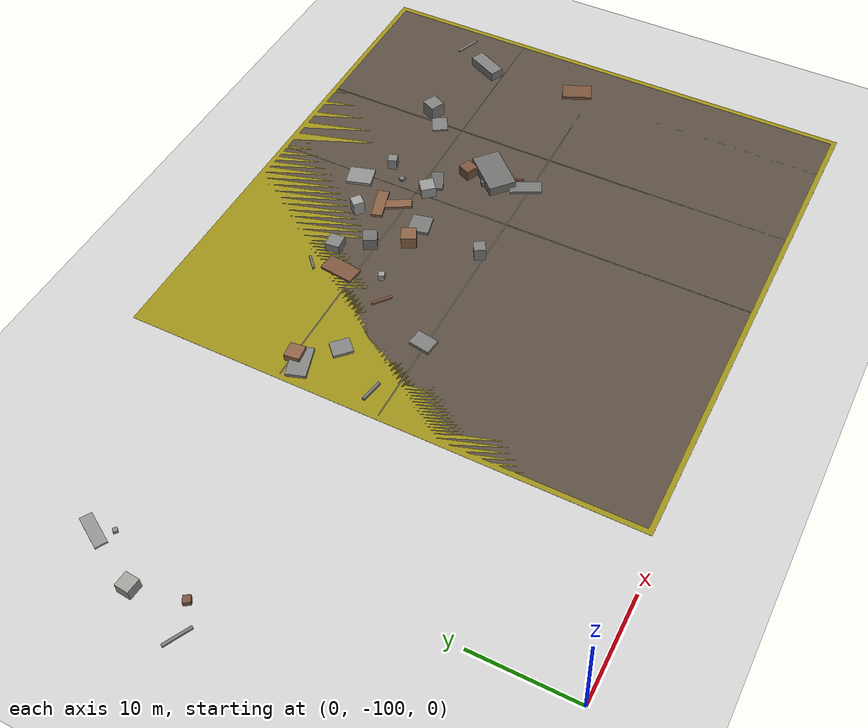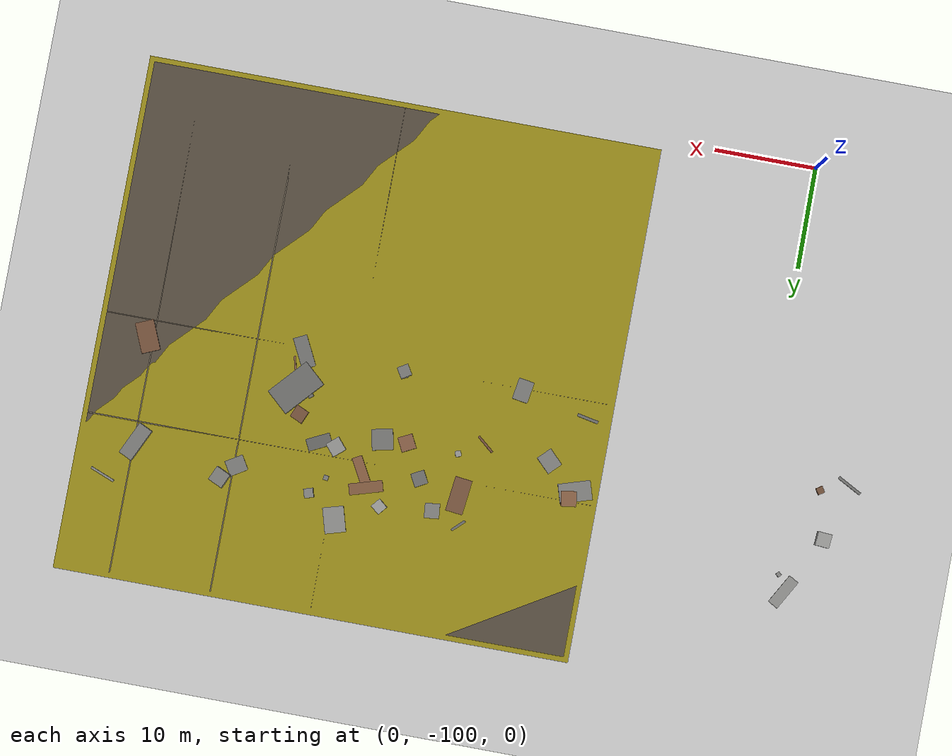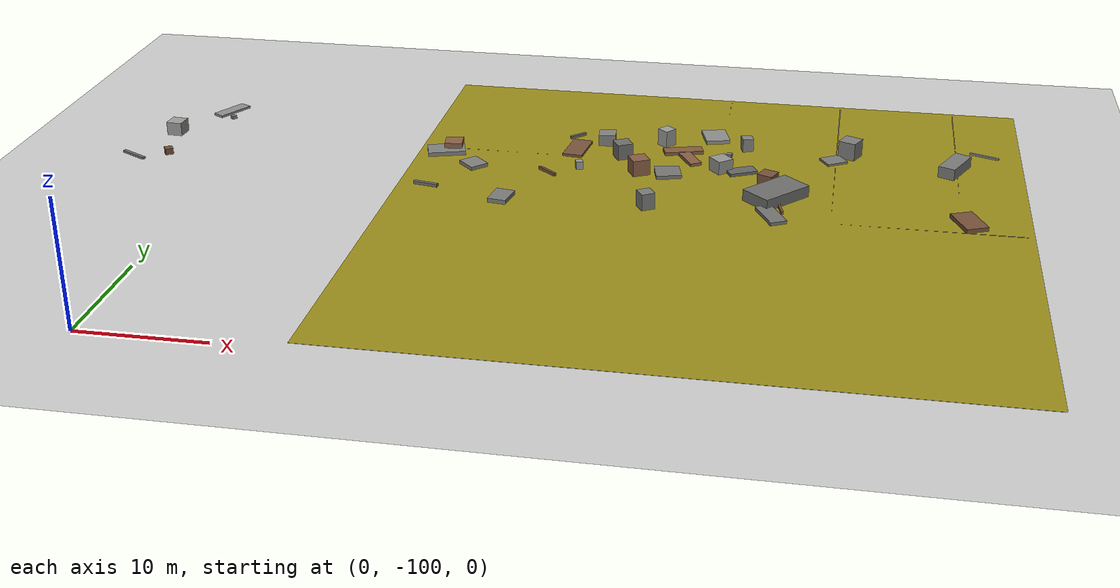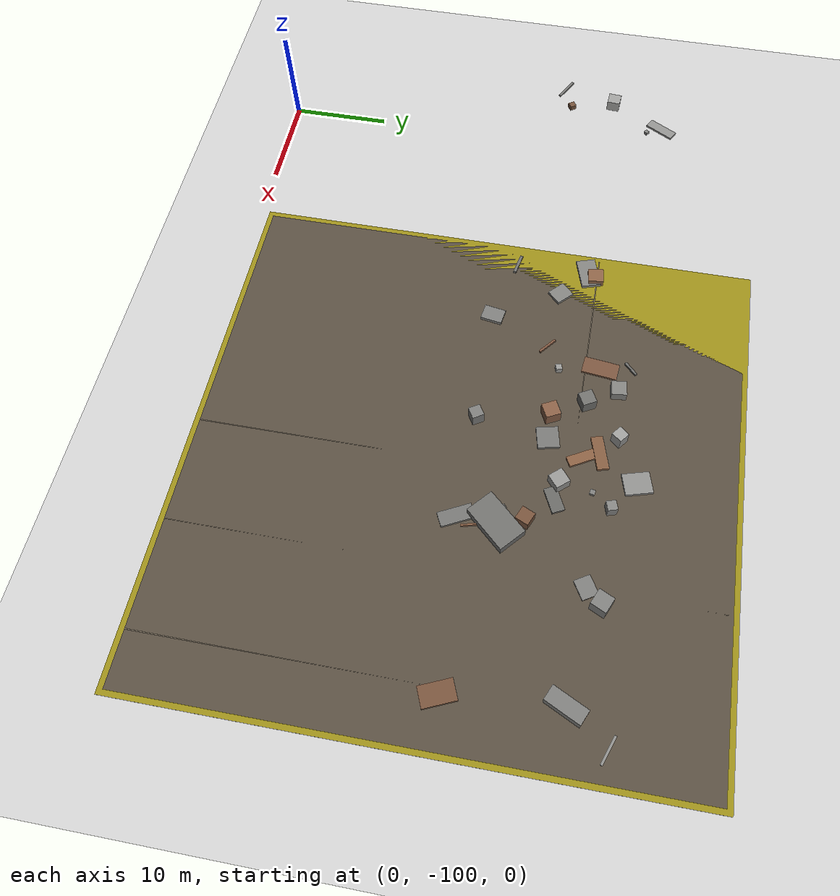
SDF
<sdf version="1.6">
 <world name="navitas_arena">
  <model name="ground_plane">
   <static>true</static>
   <link name="link">
    <collision name="collision">
     <geometry><plane><normal>0 0 1</normal><size>400 400</size></plane></geometry>
     <surface><friction><ode><mu>0.8</mu><mu2>0.8</mu2></ode></friction></surface>
    </collision>
    <visual name="visual">
     <cast_shadows>false</cast_shadows>
     <geometry><plane><normal>0 0 1</normal><size>400 400</size></plane></geometry>
     <material>
      <script><uri>file://media/materials/scripts/gazebo.material</uri><name>Gazebo/Grey</name></script>
     </material>
    </visual>
   </link>
  </model>
  <model name="gr_orta">
   <static>true</static>
   <pose>40.700 -73.600 0.010 0 0 0.000</pose>
   <link name="link">
    <collision name="col"><geometry><box><size>51.000 51.000 0.020</size></box></geometry></collision>
    <visual name="vis">
     <geometry><box><size>51.000 51.000 0.020</size></box></geometry>
     <material><ambient>0.60 0.55 0.10 1</ambient><diffuse>0.60 0.55 0.10 1</diffuse></material>
    </visual>
   </link>
  </model>
  <model name="gd_orta">
   <static>true</static>
   <pose>40.700 -73.600 0.010 0 0 0.000</pose>
   <link name="link">
    <collision name="col"><geometry><box><size>50.000 50.000 0.020</size></box></geometry></collision>
    <visual name="vis">
     <geometry><box><size>50.000 50.000 0.020</size></box></geometry>
     <material><ambient>0.34 0.30 0.25 1</ambient><diffuse>0.34 0.30 0.25 1</diffuse></material>
    </visual>
   </link>
  </model>
  <model name="gv_orta_0">
   <static>true</static>
   <pose>40.700 -73.600 0.010 0 0 0.000</pose>
   <link name="link">
    <collision name="col"><geometry><box><size>0.120 50.000 0.020</size></box></geometry></collision>
    <visual name="vis">
     <geometry><box><size>0.120 50.000 0.020</size></box></geometry>
     <material><ambient>0.42 0.38 0.32 1</ambient><diffuse>0.42 0.38 0.32 1</diffuse></material>
    </visual>
   </link>
  </model>
  <model name="gh_orta_0">
   <static>true</static>
   <pose>40.700 -73.600 0.010 0 0 0.000</pose>
   <link name="link">
    <collision name="col"><geometry><box><size>50.000 0.120 0.020</size></box></geometry></collision>
    <visual name="vis">
     <geometry><box><size>50.000 0.120 0.020</size></box></geometry>
     <material><ambient>0.42 0.38 0.32 1</ambient><diffuse>0.42 0.38 0.32 1</diffuse></material>
    </visual>
   </link>
  </model>
  <model name="gv_orta_1">
   <static>true</static>
   <pose>50.700 -73.600 0.010 0 0 0.000</pose>
   <link name="link">
    <collision name="col"><geometry><box><size>0.120 50.000 0.020</size></box></geometry></collision>
    <visual name="vis">
     <geometry><box><size>0.120 50.000 0.020</size></box></geometry>
     <material><ambient>0.42 0.38 0.32 1</ambient><diffuse>0.42 0.38 0.32 1</diffuse></material>
    </visual>
   </link>
  </model>
  <model name="gh_orta_1">
   <static>true</static>
   <pose>40.700 -63.600 0.010 0 0 0.000</pose>
   <link name="link">
    <collision name="col"><geometry><box><size>50.000 0.120 0.020</size></box></geometry></collision>
    <visual name="vis">
     <geometry><box><size>50.000 0.120 0.020</size></box></geometry>
     <material><ambient>0.42 0.38 0.32 1</ambient><diffuse>0.42 0.38 0.32 1</diffuse></material>
    </visual>
   </link>
  </model>
  <model name="gv_orta_2">
   <static>true</static>
   <pose>60.700 -73.600 0.010 0 0 0.000</pose>
   <link name="link">
    <collision name="col"><geometry><box><size>0.120 50.000 0.020</size></box></geometry></collision>
    <visual name="vis">
     <geometry><box><size>0.120 50.000 0.020</size></box></geometry>
     <material><ambient>0.42 0.38 0.32 1</ambient><diffuse>0.42 0.38 0.32 1</diffuse></material>
    </visual>
   </link>
  </model>
  <model name="chic_orta_5">
   <static>true</static>
   <pose>46.088 -69.600 0.500 0 0 0.839</pose>
   <link name="link">
    <collision name="col"><geometry><box><size>4.714 2.793 1.000</size></box></geometry></collision>
    <visual name="vis">
     <geometry><box><size>4.714 2.793 1.000</size></box></geometry>
     <material><ambient>0.43 0.43 0.42 1</ambient><diffuse>0.43 0.43 0.42 1</diffuse></material>
    </visual>
   </link>
  </model>
  <model name="chic_orta_6">
   <static>true</static>
   <pose>60.484 -61.600 0.500 0 0 1.132</pose>
   <link name="link">
    <collision name="col"><geometry><box><size>3.486 1.432 1.000</size></box></geometry></collision>
    <visual name="vis">
     <geometry><box><size>3.486 1.432 1.000</size></box></geometry>
     <material><ambient>0.48 0.48 0.47 1</ambient><diffuse>0.48 0.48 0.47 1</diffuse></material>
    </visual>
   </link>
  </model>
  <model name="deb_orta_2">
   <static>true</static>
   <pose>17.560 -71.838 0.138 0 0 2.945</pose>
   <link name="link">
    <collision name="col"><geometry><box><size>2.136 0.287 0.275</size></box></geometry></collision>
    <visual name="vis">
     <geometry><box><size>2.136 0.287 0.275</size></box></geometry>
     <material><ambient>0.43 0.43 0.42 1</ambient><diffuse>0.43 0.43 0.42 1</diffuse></material>
    </visual>
   </link>
  </model>
  <model name="deb_orta_5">
   <static>true</static>
   <pose>42.990 -59.746 0.592 0 0 0.305</pose>
   <link name="link">
    <collision name="col"><geometry><box><size>0.919 0.919 1.184</size></box></geometry></collision>
    <visual name="vis">
     <geometry><box><size>0.919 0.919 1.184</size></box></geometry>
     <material><ambient>0.51 0.51 0.50 1</ambient><diffuse>0.51 0.51 0.50 1</diffuse></material>
    </visual>
   </link>
  </model>
  <model name="deb_orta_7">
   <static>true</static>
   <pose>38.222 -62.586 0.142 0 0 2.077</pose>
   <link name="link">
    <collision name="col"><geometry><box><size>3.371 1.010 0.284</size></box></geometry></collision>
    <visual name="vis">
     <geometry><box><size>3.371 1.010 0.284</size></box></geometry>
     <material><ambient>0.53 0.37 0.26 1</ambient><diffuse>0.53 0.37 0.26 1</diffuse></material>
    </visual>
   </link>
  </model>
  <model name="deb_orta_10">
   <static>true</static>
   <pose>35.970 -73.095 0.703 0 0 2.119</pose>
   <link name="link">
    <collision name="col"><geometry><box><size>1.142 1.142 1.406</size></box></geometry></collision>
    <visual name="vis">
     <geometry><box><size>1.142 1.142 1.406</size></box></geometry>
     <material><ambient>0.48 0.48 0.47 1</ambient><diffuse>0.48 0.48 0.47 1</diffuse></material>
    </visual>
   </link>
  </model>
  <model name="deb_orta_12">
   <static>true</static>
   <pose>30.873 -60.231 0.498 0 0 1.670</pose>
   <link name="link">
    <collision name="col"><geometry><box><size>1.457 1.457 0.996</size></box></geometry></collision>
    <visual name="vis">
     <geometry><box><size>1.457 1.457 0.996</size></box></geometry>
     <material><ambient>0.50 0.50 0.49 1</ambient><diffuse>0.50 0.50 0.49 1</diffuse></material>
    </visual>
   </link>
  </model>
  <model name="deb_orta_17">
   <static>true</static>
   <pose>40.092 -57.634 0.173 0 0 1.851</pose>
   <link name="link">
    <collision name="col"><geometry><box><size>2.559 2.071 0.346</size></box></geometry></collision>
    <visual name="vis">
     <geometry><box><size>2.559 2.071 0.346</size></box></geometry>
     <material><ambient>0.55 0.55 0.54 1</ambient><diffuse>0.55 0.55 0.54 1</diffuse></material>
    </visual>
   </link>
  </model>
  <model name="deb_orta_20">
   <static>true</static>
   <pose>41.193 -64.648 0.588 0 0 2.275</pose>
   <link name="link">
    <collision name="col"><geometry><box><size>1.442 1.442 1.176</size></box></geometry></collision>
    <visual name="vis">
     <geometry><box><size>1.442 1.442 1.176</size></box></geometry>
     <material><ambient>0.58 0.58 0.57 1</ambient><diffuse>0.58 0.58 0.57 1</diffuse></material>
    </visual>
   </link>
  </model>
  <model name="deb_orta_23">
   <static>true</static>
   <pose>37.630 -61.274 0.157 0 0 0.290</pose>
   <link name="link">
    <collision name="col"><geometry><box><size>3.327 1.115 0.315</size></box></geometry></collision>
    <visual name="vis">
     <geometry><box><size>3.327 1.115 0.315</size></box></geometry>
     <material><ambient>0.51 0.36 0.25 1</ambient><diffuse>0.51 0.36 0.25 1</diffuse></material>
    </visual>
   </link>
  </model>
  <model name="deb_orta_25">
   <static>true</static>
   <pose>17.992 -63.806 0.405 0 0 1.698</pose>
   <link name="link">
    <collision name="col"><geometry><box><size>1.508 1.508 0.811</size></box></geometry></collision>
    <visual name="vis">
     <geometry><box><size>1.508 1.508 0.811</size></box></geometry>
     <material><ambient>0.54 0.38 0.27 1</ambient><diffuse>0.54 0.38 0.27 1</diffuse></material>
    </visual>
   </link>
  </model>
  <model name="deb_orta_34">
   <static>true</static>
   <pose>42.927 -64.820 0.138 0 0 0.458</pose>
   <link name="link">
    <collision name="col"><geometry><box><size>2.419 1.211 0.277</size></box></geometry></collision>
    <visual name="vis">
     <geometry><box><size>2.419 1.211 0.277</size></box></geometry>
     <material><ambient>0.40 0.40 0.39 1</ambient><diffuse>0.40 0.40 0.39 1</diffuse></material>
    </visual>
   </link>
  </model>
  <model name="deb_orta_35">
   <static>true</static>
   <pose>61.286 -71.914 0.180 0 0 1.976</pose>
   <link name="link">
    <collision name="col"><geometry><box><size>3.042 1.858 0.361</size></box></geometry></collision>
    <visual name="vis">
     <geometry><box><size>3.042 1.858 0.361</size></box></geometry>
     <material><ambient>0.46 0.32 0.23 1</ambient><diffuse>0.46 0.32 0.23 1</diffuse></material>
    </visual>
   </link>
  </model>
  <model name="deb_orta_36">
   <static>true</static>
   <pose>34.460 -66.274 0.694 0 0 2.043</pose>
   <link name="link">
    <collision name="col"><geometry><box><size>1.467 1.467 1.389</size></box></geometry></collision>
    <visual name="vis">
     <geometry><box><size>1.467 1.467 1.389</size></box></geometry>
     <material><ambient>0.53 0.37 0.27 1</ambient><diffuse>0.53 0.37 0.27 1</diffuse></material>
    </visual>
   </link>
  </model>
  <model name="deb_orta_38">
   <static>true</static>
   <pose>50.443 -61.094 0.103 0 0 0.545</pose>
   <link name="link">
    <collision name="col"><geometry><box><size>1.862 1.574 0.206</size></box></geometry></collision>
    <visual name="vis">
     <geometry><box><size>1.862 1.574 0.206</size></box></geometry>
     <material><ambient>0.48 0.48 0.47 1</ambient><diffuse>0.48 0.48 0.47 1</diffuse></material>
    </visual>
   </link>
  </model>
  <model name="deb_orta_39">
   <static>true</static>
   <pose>17.488 -64.578 0.182 0 0 0.303</pose>
   <link name="link">
    <collision name="col"><geometry><box><size>3.190 1.926 0.364</size></box></geometry></collision>
    <visual name="vis">
     <geometry><box><size>3.190 1.926 0.364</size></box></geometry>
     <material><ambient>0.50 0.50 0.49 1</ambient><diffuse>0.50 0.50 0.49 1</diffuse></material>
    </visual>
   </link>
  </model>
  <model name="deb_orta_43">
   <static>true</static>
   <pose>36.895 -66.194 0.164 0 0 0.223</pose>
   <link name="link">
    <collision name="col"><geometry><box><size>2.118 2.064 0.328</size></box></geometry></collision>
    <visual name="vis">
     <geometry><box><size>2.118 2.064 0.328</size></box></geometry>
     <material><ambient>0.46 0.46 0.45 1</ambient><diffuse>0.46 0.46 0.45 1</diffuse></material>
    </visual>
   </link>
  </model>
  <model name="deb_orta_45">
   <static>true</static>
   <pose>51.790 -59.699 0.772 0 0 1.140</pose>
   <link name="link">
    <collision name="col"><geometry><box><size>1.526 1.526 1.544</size></box></geometry></collision>
    <visual name="vis">
     <geometry><box><size>1.526 1.526 1.544</size></box></geometry>
     <material><ambient>0.49 0.49 0.48 1</ambient><diffuse>0.49 0.49 0.48 1</diffuse></material>
    </visual>
   </link>
  </model>
  <model name="deb_orta_48">
   <static>true</static>
   <pose>26.921 -67.549 0.140 0 0 2.447</pose>
   <link name="link">
    <collision name="col"><geometry><box><size>2.037 0.218 0.280</size></box></geometry></collision>
    <visual name="vis">
     <geometry><box><size>2.037 0.218 0.280</size></box></geometry>
     <material><ambient>0.48 0.33 0.24 1</ambient><diffuse>0.48 0.33 0.24 1</diffuse></material>
    </visual>
   </link>
  </model>
  <model name="deb_orta_49">
   <static>true</static>
   <pose>28.566 -62.166 0.125 0 0 1.456</pose>
   <link name="link">
    <collision name="col"><geometry><box><size>3.449 1.711 0.249</size></box></geometry></collision>
    <visual name="vis">
     <geometry><box><size>3.449 1.711 0.249</size></box></geometry>
     <material><ambient>0.47 0.33 0.24 1</ambient><diffuse>0.47 0.33 0.24 1</diffuse></material>
    </visual>
   </link>
  </model>
  <model name="deb_orta_53">
   <static>true</static>
   <pose>35.839 -72.784 0.200 0 0 0.433</pose>
   <link name="link">
    <collision name="col"><geometry><box><size>0.565 0.565 0.401</size></box></geometry></collision>
    <visual name="vis">
     <geometry><box><size>0.565 0.565 0.401</size></box></geometry>
     <material><ambient>0.53 0.53 0.52 1</ambient><diffuse>0.53 0.53 0.52 1</diffuse></material>
    </visual>
   </link>
  </model>
  <model name="deb_orta_59">
   <static>true</static>
   <pose>29.378 -66.156 0.341 0 0 0.319</pose>
   <link name="link">
    <collision name="col"><geometry><box><size>0.580 0.580 0.682</size></box></geometry></collision>
    <visual name="vis">
     <geometry><box><size>0.580 0.580 0.682</size></box></geometry>
     <material><ambient>0.59 0.59 0.58 1</ambient><diffuse>0.59 0.59 0.58 1</diffuse></material>
    </visual>
   </link>
  </model>
  <model name="deb_orta_60">
   <static>true</static>
   <pose>28.101 -59.273 0.125 0 0 0.766</pose>
   <link name="link">
    <collision name="col"><geometry><box><size>1.585 0.239 0.250</size></box></geometry></collision>
    <visual name="vis">
     <geometry><box><size>1.585 0.239 0.250</size></box></geometry>
     <material><ambient>0.42 0.42 0.41 1</ambient><diffuse>0.42 0.42 0.41 1</diffuse></material>
    </visual>
   </link>
  </model>
  <model name="deb_orta_63">
   <static>true</static>
   <pose>32.642 -63.081 0.690 0 0 2.067</pose>
   <link name="link">
    <collision name="col"><geometry><box><size>1.366 1.366 1.380</size></box></geometry></collision>
    <visual name="vis">
     <geometry><box><size>1.366 1.366 1.380</size></box></geometry>
     <material><ambient>0.43 0.43 0.42 1</ambient><diffuse>0.43 0.43 0.42 1</diffuse></material>
    </visual>
   </link>
  </model>
  <model name="deb_orta_64">
   <static>true</static>
   <pose>44.618 -69.190 0.270 0 0 0.653</pose>
   <link name="link">
    <collision name="col"><geometry><box><size>0.530 0.530 0.540</size></box></geometry></collision>
    <visual name="vis">
     <geometry><box><size>0.530 0.530 0.540</size></box></geometry>
     <material><ambient>0.42 0.42 0.41 1</ambient><diffuse>0.42 0.42 0.41 1</diffuse></material>
    </visual>
   </link>
  </model>
  <model name="deb_orta_65">
   <static>true</static>
   <pose>46.510 -71.486 0.143 0 0 1.832</pose>
   <link name="link">
    <collision name="col"><geometry><box><size>2.349 0.170 0.285</size></box></geometry></collision>
    <visual name="vis">
     <geometry><box><size>2.349 0.170 0.285</size></box></geometry>
     <material><ambient>0.50 0.35 0.25 1</ambient><diffuse>0.50 0.35 0.25 1</diffuse></material>
    </visual>
   </link>
  </model>
  <model name="deb_orta_71">
   <static>true</static>
   <pose>20.484 -67.061 0.166 0 0 2.361</pose>
   <link name="link">
    <collision name="col"><geometry><box><size>1.900 1.627 0.332</size></box></geometry></collision>
    <visual name="vis">
     <geometry><box><size>1.900 1.627 0.332</size></box></geometry>
     <material><ambient>0.50 0.50 0.49 1</ambient><diffuse>0.50 0.50 0.49 1</diffuse></material>
    </visual>
   </link>
  </model>
  <model name="deb_orta_72">
   <static>true</static>
   <pose>41.633 -61.514 0.155 0 0 2.976</pose>
   <link name="link">
    <collision name="col"><geometry><box><size>0.477 0.477 0.310</size></box></geometry></collision>
    <visual name="vis">
     <geometry><box><size>0.477 0.477 0.310</size></box></geometry>
     <material><ambient>0.48 0.48 0.47 1</ambient><diffuse>0.48 0.48 0.47 1</diffuse></material>
    </visual>
   </link>
  </model>
  <model name="deb_orta_75">
   <static>true</static>
   <pose>24.244 -73.379 0.189 0 0 1.411</pose>
   <link name="link">
    <collision name="col"><geometry><box><size>2.132 1.564 0.377</size></box></geometry></collision>
    <visual name="vis">
     <geometry><box><size>2.132 1.564 0.377</size></box></geometry>
     <material><ambient>0.48 0.48 0.47 1</ambient><diffuse>0.48 0.48 0.47 1</diffuse></material>
    </visual>
   </link>
  </model>
  <model name="deb_orta_76">
   <static>true</static>
   <pose>36.006 -59.692 0.742 0 0 2.449</pose>
   <link name="link">
    <collision name="col"><geometry><box><size>1.096 1.096 1.484</size></box></geometry></collision>
    <visual name="vis">
     <geometry><box><size>1.096 1.096 1.484</size></box></geometry>
     <material><ambient>0.61 0.61 0.60 1</ambient><diffuse>0.61 0.61 0.60 1</diffuse></material>
    </visual>
   </link>
  </model>
  <model name="deb_orta_77">
   <static>true</static>
   <pose>63.137 -57.898 0.088 0 0 2.770</pose>
   <link name="link">
    <collision name="col"><geometry><box><size>2.551 0.222 0.176</size></box></geometry></collision>
    <visual name="vis">
     <geometry><box><size>2.551 0.222 0.176</size></box></geometry>
     <material><ambient>0.54 0.54 0.53 1</ambient><diffuse>0.54 0.54 0.53 1</diffuse></material>
    </visual>
   </link>
  </model>
  <model name="deb_orta_79">
   <static>true</static>
   <pose>45.942 -73.187 0.150 0 0 2.038</pose>
   <link name="link">
    <collision name="col"><geometry><box><size>3.186 1.393 0.299</size></box></geometry></collision>
    <visual name="vis">
     <geometry><box><size>3.186 1.393 0.299</size></box></geometry>
     <material><ambient>0.45 0.45 0.44 1</ambient><diffuse>0.45 0.45 0.44 1</diffuse></material>
    </visual>
   </link>
  </model>
  <model name="deb_orta_82">
   <static>true</static>
   <pose>45.275 -67.132 0.575 0 0 1.158</pose>
   <link name="link">
    <collision name="col"><geometry><box><size>1.315 1.315 1.151</size></box></geometry></collision>
    <visual name="vis">
     <geometry><box><size>1.315 1.315 1.151</size></box></geometry>
     <material><ambient>0.46 0.32 0.23 1</ambient><diffuse>0.46 0.32 0.23 1</diffuse></material>
    </visual>
   </link>
  </model>
  <model name="deb_zor_25">
   <static>true</static>
   <pose>-4.208 -58.692 0.105 0 0 1.054</pose>
   <link name="link">
    <collision name="col"><geometry><box><size>3.245 1.098 0.209</size></box></geometry></collision>
    <visual name="vis">
     <geometry><box><size>3.245 1.098 0.209</size></box></geometry>
     <material><ambient>0.56 0.56 0.55 1</ambient><diffuse>0.56 0.56 0.55 1</diffuse></material>
    </visual>
   </link>
  </model>
  <model name="deb_zor_33">
   <static>true</static>
   <pose>-5.970 -69.058 0.272 0 0 2.144</pose>
   <link name="link">
    <collision name="col"><geometry><box><size>0.670 0.670 0.543</size></box></geometry></collision>
    <visual name="vis">
     <geometry><box><size>0.670 0.670 0.543</size></box></geometry>
     <material><ambient>0.45 0.32 0.23 1</ambient><diffuse>0.45 0.32 0.23 1</diffuse></material>
    </visual>
   </link>
  </model>
  <model name="deb_zor_73">
   <static>true</static>
   <pose>-3.446 -60.284 0.152 0 0 2.432</pose>
   <link name="link">
    <collision name="col"><geometry><box><size>0.415 0.415 0.305</size></box></geometry></collision>
    <visual name="vis">
     <geometry><box><size>0.415 0.415 0.305</size></box></geometry>
     <material><ambient>0.51 0.51 0.50 1</ambient><diffuse>0.51 0.51 0.50 1</diffuse></material>
    </visual>
   </link>
  </model>
  <model name="deb_zor_83">
   <static>true</static>
   <pose>-7.068 -64.391 0.585 0 0 3.062</pose>
   <link name="link">
    <collision name="col"><geometry><box><size>1.376 1.376 1.169</size></box></geometry></collision>
    <visual name="vis">
     <geometry><box><size>1.376 1.376 1.169</size></box></geometry>
     <material><ambient>0.61 0.61 0.60 1</ambient><diffuse>0.61 0.61 0.60 1</diffuse></material>
    </visual>
   </link>
  </model>
  <model name="deb_zor_87">
   <static>true</static>
   <pose>-8.717 -70.045 0.097 0 0 2.652</pose>
   <link name="link">
    <collision name="col"><geometry><box><size>2.626 0.276 0.194</size></box></geometry></collision>
    <visual name="vis">
     <geometry><box><size>2.626 0.276 0.194</size></box></geometry>
     <material><ambient>0.46 0.46 0.45 1</ambient><diffuse>0.46 0.46 0.45 1</diffuse></material>
    </visual>
   </link>
  </model>
 </world>
</sdf>
